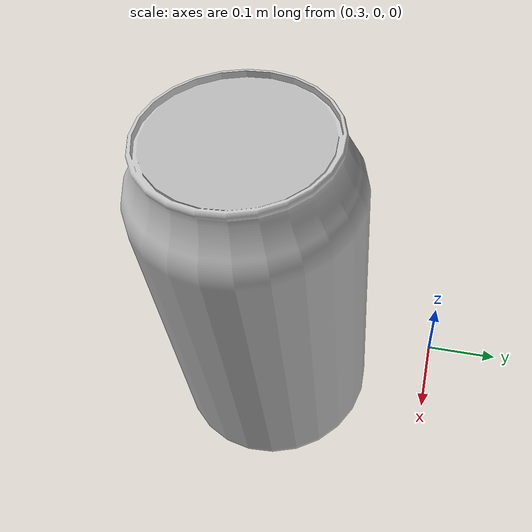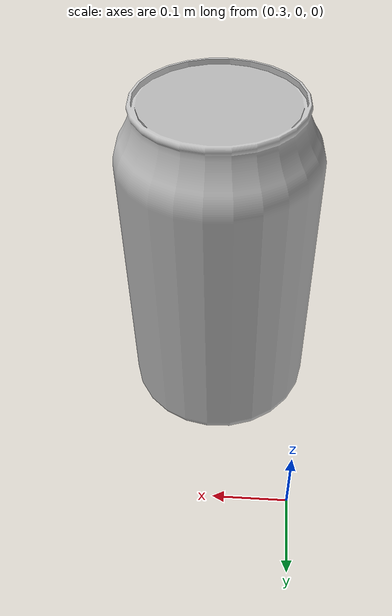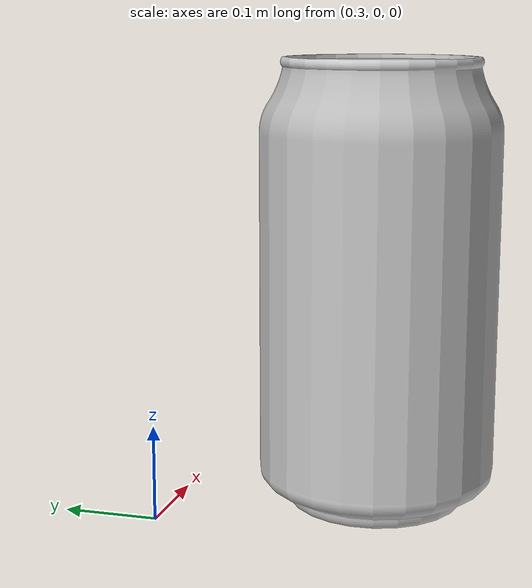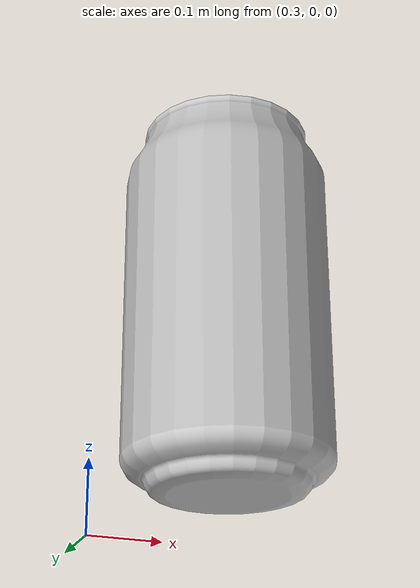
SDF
<?xml version="1.0"?>
<sdf version="1.5">
  <model name='icps_cola_can'>
    <link name='icps_cola_can_link'>
      <inertial>
        <mass>0.39</mass>
        <inertia>
          <ixx>0.00058</ixx>
          <ixy>0</ixy>
          <ixz>0</ixz>
          <iyy>0.00058</iyy>
          <iyz>0</iyz>
          <izz>0.00058</izz>
        </inertia>
      </inertial>
      <collision name='collision'>
        <pose frame=''>0 0 0 0 -0 0</pose>
        <geometry>
          <mesh>
            <uri>model://models/icps_cola_can/model.dae</uri>
            <scale>1 1 1</scale>
          </mesh>
        </geometry>
        <max_contacts>10</max_contacts>
        <surface>
          <contact>
            <ode/>
          </contact>
          <bounce/>
          <friction>
            <torsional>
              <ode/>
            </torsional>
            <ode/>
          </friction>
        </surface>
      </collision>
      <visual name='visual'>
        <pose frame=''>0 0 0 0 -0 0</pose>
        <geometry>
          <mesh>
            <uri>model://models/icps_cola_can/model.dae</uri>
            <scale>1 1 1</scale>
          </mesh>
        </geometry>
      </visual>
      <self_collide>0</self_collide>
      <kinematic>0</kinematic>
      <gravity>1</gravity>
    </link>
  </model>
</sdf>
